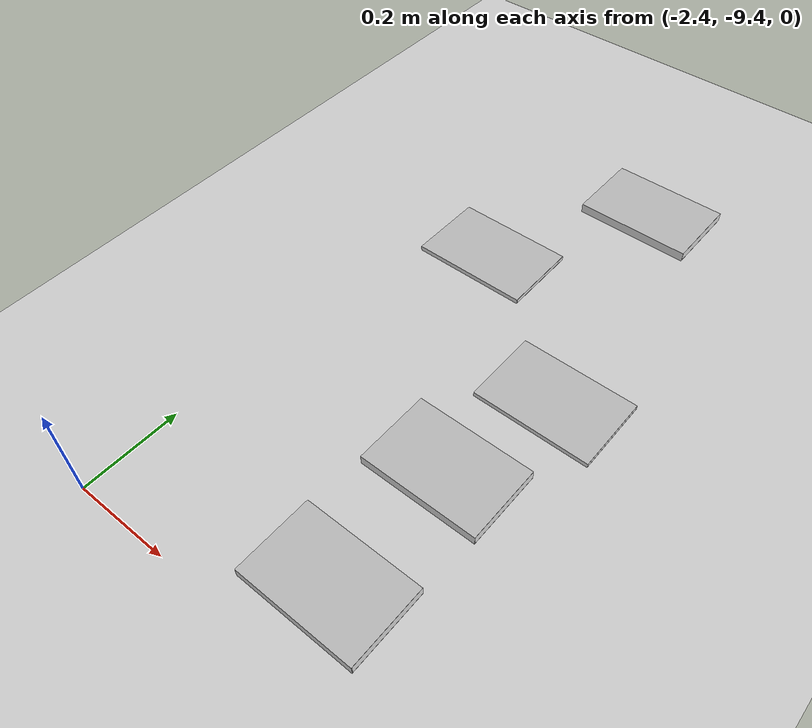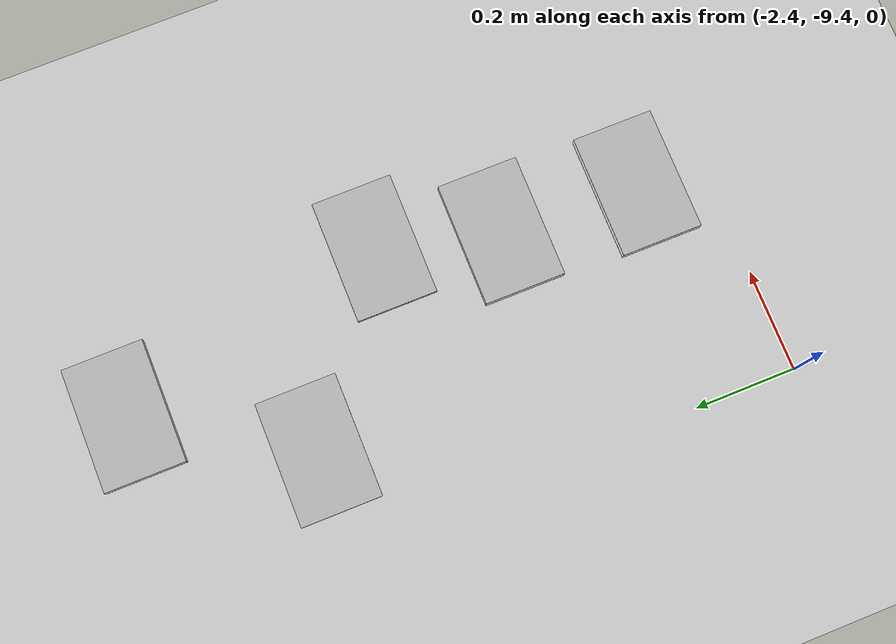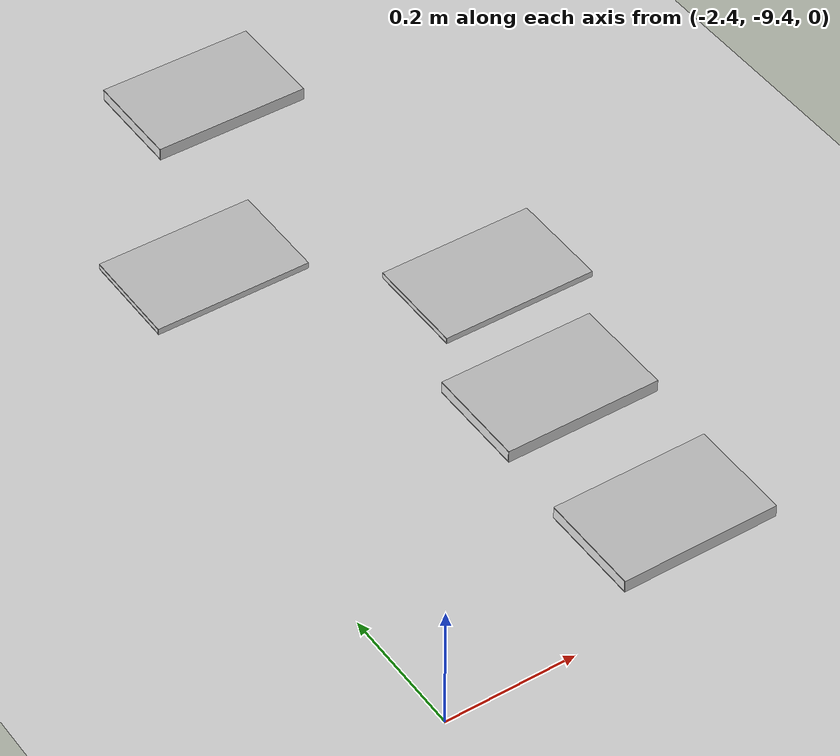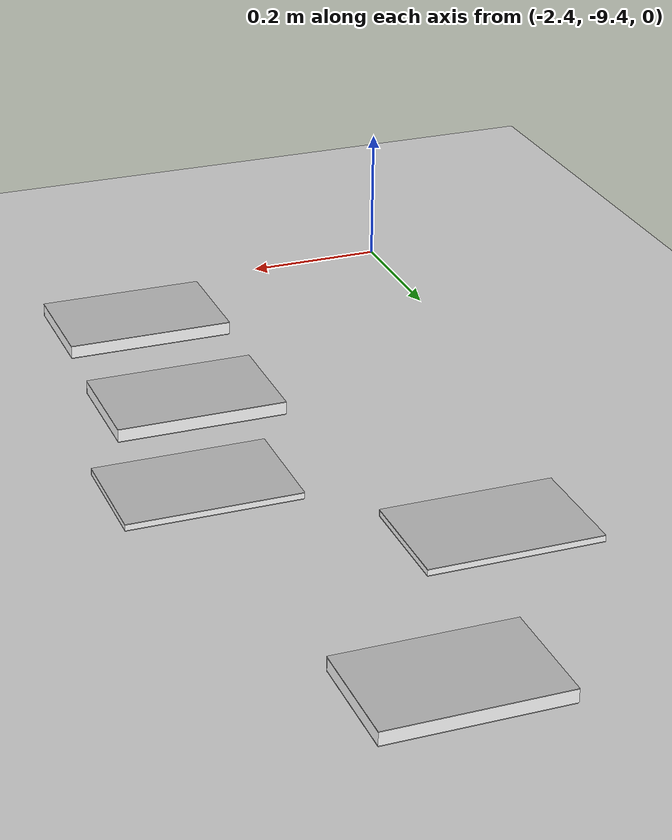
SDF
<sdf version="1.6">
 <world name="default">
  <model name="ground_plane">
   <static>1</static>
   <link name="link">
    <collision name="collision">
     <geometry><plane><normal>0 0 1</normal><size>100 100</size></plane></geometry>
     <surface><friction><ode><mu>1</mu><mu2>1</mu2></ode></friction></surface>
    </collision>
    <visual name="visual">
     <cast_shadows>0</cast_shadows>
     <geometry><plane><normal>0 0 1</normal><size>100 100</size></plane></geometry>
     <material>
      <script><uri>file://media/materials/scripts/gazebo.material</uri><name>Gazebo/Grey</name></script>
     </material>
    </visual>
    <velocity_decay><linear>0</linear><angular>0</angular></velocity_decay>
   </link>
  </model>
  <model name="book_21">
   <link name="cover">
    <pose>0 -0.000108 0.005 0 -0 0</pose>
    <visual name="visual">
     <geometry><box><size>0.245 0.16 0.01</size></box></geometry>
     <material>
      <script>
       <uri>model://book_21/materials/scripts</uri>
       <uri>model://book_21/materials/textures</uri>
       <name>book_21</name>
      </script>
     </material>
    </visual>
    <collision name="collision"><geometry><box><size>0.245 0.16 0.01</size></box></geometry></collision>
   </link>
   <link name="page">
    <pose>0 0.000608 0.005 0 -0 0</pose>
    <visual name="visual">
     <geometry><box><size>0.24502 0.15862 0.008</size></box></geometry>
     <material>
      <lighting>1</lighting>
      <ambient>1 1 1 1</ambient>
      <diffuse>1 1 1 1</diffuse>
      <specular>0.01 0.01 0.01 1</specular>
      <emissive>0 0 0 1</emissive>
      <shader type="vertex"><normal_map>__default__</normal_map></shader>
     </material>
    </visual>
    <collision name="collision"><geometry><box><size>0.245 0.16 0.008</size></box></geometry></collision>
   </link>
   <static>1</static>
   <pose>-1.89263 -8.75325 0 0 -0 0</pose>
  </model>
  <model name="book_3">
   <link name="cover">
    <pose>0 -0.000108 0.01 0 -0 0</pose>
    <visual name="visual">
     <geometry><box><size>0.245 0.16 0.02</size></box></geometry>
     <material>
      <script>
       <uri>model://book_3/materials/scripts</uri>
       <uri>model://book_3/materials/textures</uri>
       <name>book_3</name>
      </script>
     </material>
    </visual>
    <collision name="collision"><geometry><box><size>0.245 0.16 0.02</size></box></geometry></collision>
   </link>
   <link name="page">
    <pose>0 0.000608 0.01 0 -0 0</pose>
    <visual name="visual">
     <geometry><box><size>0.24502 0.15862 0.018</size></box></geometry>
     <material>
      <lighting>1</lighting>
      <ambient>1 1 1 1</ambient>
      <diffuse>1 1 1 1</diffuse>
      <specular>0.01 0.01 0.01 1</specular>
      <emissive>0 0 0 1</emissive>
      <shader type="vertex"><normal_map>__default__</normal_map></shader>
     </material>
    </visual>
    <collision name="collision"><geometry><box><size>0.245 0.16 0.018</size></box></geometry></collision>
   </link>
   <static>1</static>
   <pose>-1.95204 -8.98895 0 0 -0 0</pose>
  </model>
  <model name="book_4">
   <link name="cover">
    <pose>0 -0.000108 0.01 0 -0 0</pose>
    <visual name="visual">
     <geometry><box><size>0.245 0.16 0.02</size></box></geometry>
     <material>
      <script>
       <uri>model://book_4/materials/scripts</uri>
       <uri>model://book_4/materials/textures</uri>
       <name>book_4</name>
      </script>
     </material>
     <cast_shadows>0</cast_shadows>
    </visual>
    <collision name="collision"><geometry><box><size>0.245 0.16 0.02</size></box></geometry></collision>
   </link>
   <link name="page">
    <pose>0 0.000608 0.01 0 -0 0</pose>
    <visual name="visual">
     <geometry><box><size>0.24502 0.15862 0.018</size></box></geometry>
     <material>
      <lighting>1</lighting>
      <ambient>1 1 1 1</ambient>
      <diffuse>1 1 1 1</diffuse>
      <specular>0.01 0.01 0.01 1</specular>
      <emissive>0 0 0 1</emissive>
      <shader type="vertex"><normal_map>__default__</normal_map></shader>
     </material>
     <cast_shadows>0</cast_shadows>
    </visual>
    <collision name="collision"><geometry><box><size>0.245 0.16 0.018</size></box></geometry></collision>
   </link>
   <static>1</static>
   <pose>-1.96149 -9.2657 0 0 -0 0</pose>
  </model>
  <model name="book_9">
   <link name="cover">
    <pose>0 -0.000108 0.005 0 -0 0</pose>
    <visual name="visual">
     <geometry><box><size>0.245 0.16 0.01</size></box></geometry>
     <material>
      <script>
       <uri>model://book_9/materials/scripts</uri>
       <uri>model://book_9/materials/textures</uri>
       <name>book_9</name>
      </script>
     </material>
    </visual>
    <collision name="collision"><geometry><box><size>0.245 0.16 0.01</size></box></geometry></collision>
   </link>
   <link name="page">
    <pose>0 0.000608 0.005 0 -0 0</pose>
    <visual name="visual">
     <geometry><box><size>0.24502 0.15862 0.008</size></box></geometry>
     <material>
      <lighting>1</lighting>
      <ambient>1 1 1 1</ambient>
      <diffuse>1 1 1 1</diffuse>
      <specular>0.01 0.01 0.01 1</specular>
      <emissive>0 0 0 1</emissive>
      <shader type="vertex"><normal_map>__default__</normal_map></shader>
     </material>
    </visual>
    <collision name="collision"><geometry><box><size>0.245 0.16 0.008</size></box></geometry></collision>
   </link>
   <static>1</static>
   <pose>-2.21231 -8.51808 0 0 -0 0</pose>
  </model>
  <model name="book_6">
   <link name="cover">
    <pose>0 -0.000108 0.01 0 -0 0</pose>
    <visual name="visual">
     <geometry><box><size>0.245 0.16 0.02</size></box></geometry>
     <material>
      <script>
       <uri>model://book_6/materials/scripts</uri>
       <uri>model://book_6/materials/textures</uri>
       <name>book_6</name>
      </script>
     </material>
    </visual>
    <collision name="collision"><geometry><box><size>0.245 0.16 0.02</size></box></geometry></collision>
   </link>
   <link name="page">
    <pose>0 0.000608 0.01 0 -0 0</pose>
    <visual name="visual">
     <geometry><box><size>0.24502 0.15862 0.018</size></box></geometry>
     <material>
      <lighting>1</lighting>
      <ambient>1 1 1 1</ambient>
      <diffuse>1 1 1 1</diffuse>
      <specular>0.01 0.01 0.01 1</specular>
      <emissive>0 0 0 1</emissive>
      <shader type="vertex"><normal_map>__default__</normal_map></shader>
     </material>
    </visual>
    <collision name="collision"><geometry><box><size>0.245 0.16 0.018</size></box></geometry></collision>
   </link>
   <static>1</static>
   <pose>-2.02089 -8.20574 0 0 -0 0</pose>
  </model>
 </world>
</sdf>
